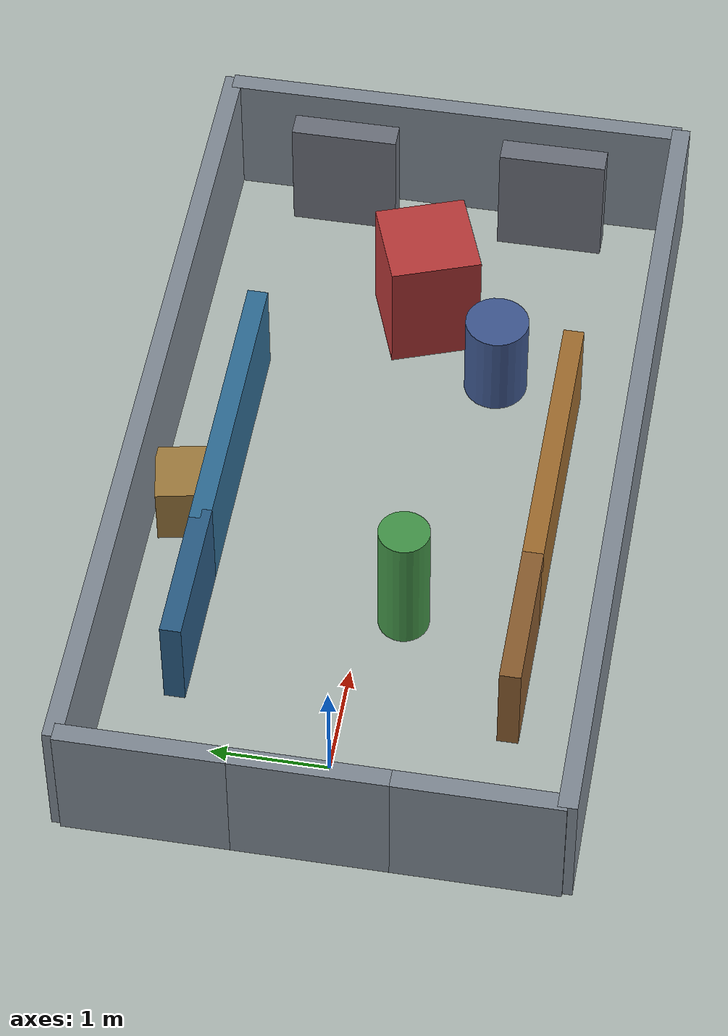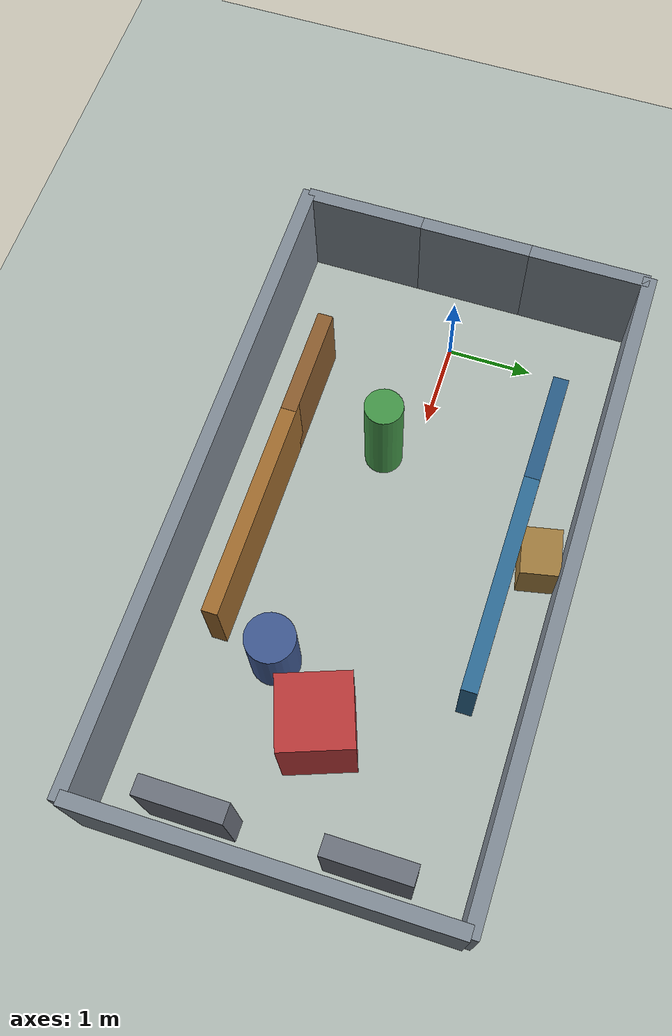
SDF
<?xml version="1.0"?>
<sdf version="1.9">
  <world name="lingtu_gazebo_empty">
    <plugin filename="gz-sim-physics-system" name="gz::sim::systems::Physics"/>
    <plugin filename="gz-sim-user-commands-system" name="gz::sim::systems::UserCommands"/>
    <plugin filename="gz-sim-scene-broadcaster-system" name="gz::sim::systems::SceneBroadcaster"/>
    <plugin filename="gz-sim-sensors-system" name="gz::sim::systems::Sensors">
      <render_engine>ogre2</render_engine>
    </plugin>

    <gravity>0 0 -9.81</gravity>
    <magnetic_field>6e-06 2.3e-05 -4.2e-05</magnetic_field>
    <atmosphere type="adiabatic"/>

    <light name="sun" type="directional">
      <cast_shadows>true</cast_shadows>
      <pose>0 0 10 0 0 0</pose>
      <diffuse>0.8 0.8 0.8 1</diffuse>
      <specular>0.2 0.2 0.2 1</specular>
      <direction>-0.5 0.1 -0.9</direction>
    </light>

    <model name="ground_plane">
      <static>true</static>
      <pose>2.85 0 0 0 0 0</pose>
      <link name="link">
        <collision name="collision">
          <geometry>
            <plane>
              <normal>0 0 1</normal>
              <size>9 6</size>
            </plane>
          </geometry>
          <surface>
            <friction>
              <ode>
                <mu>1.2</mu>
                <mu2>1.2</mu2>
              </ode>
            </friction>
          </surface>
        </collision>
        <visual name="visual">
          <geometry>
            <plane>
              <normal>0 0 1</normal>
              <size>9 6</size>
            </plane>
          </geometry>
          <material>
            <ambient>0.55 0.58 0.56 1</ambient>
            <diffuse>0.68 0.72 0.70 1</diffuse>
          </material>
        </visual>
      </link>
    </model>

    <model name="frontier_demo_wall_left">
      <static>true</static>
      <pose>3.0 1.4 0.45 0 0 0</pose>
      <link name="link">
        <collision name="collision">
          <geometry>
            <box>
              <size>2.6 0.18 0.9</size>
            </box>
          </geometry>
        </collision>
        <visual name="visual">
          <geometry>
            <box>
              <size>2.6 0.18 0.9</size>
            </box>
          </geometry>
          <material>
            <ambient>0.15 0.28 0.38 1</ambient>
            <diffuse>0.18 0.42 0.58 1</diffuse>
          </material>
        </visual>
      </link>
    </model>

    <model name="frontier_demo_wall_right">
      <static>true</static>
      <pose>3.0 -1.4 0.45 0 0 0</pose>
      <link name="link">
        <collision name="collision">
          <geometry>
            <box>
              <size>2.6 0.18 0.9</size>
            </box>
          </geometry>
        </collision>
        <visual name="visual">
          <geometry>
            <box>
              <size>2.6 0.18 0.9</size>
            </box>
          </geometry>
          <material>
            <ambient>0.36 0.24 0.12 1</ambient>
            <diffuse>0.62 0.42 0.18 1</diffuse>
          </material>
        </visual>
      </link>
    </model>

    <model name="frontier_demo_block">
      <static>true</static>
      <pose>5.0 0.0 0.55 0 0 0.35</pose>
      <link name="link">
        <collision name="collision">
          <geometry>
            <box>
              <size>0.8 0.8 1.1</size>
            </box>
          </geometry>
        </collision>
        <visual name="visual">
          <geometry>
            <box>
              <size>0.8 0.8 1.1</size>
            </box>
          </geometry>
          <material>
            <ambient>0.42 0.16 0.16 1</ambient>
            <diffuse>0.72 0.22 0.22 1</diffuse>
          </material>
        </visual>
      </link>
    </model>

    <model name="frontier_demo_column">
      <static>true</static>
      <pose>1.6 -0.35 0.6 0 0 0</pose>
      <link name="link">
        <collision name="collision">
          <geometry>
            <cylinder>
              <radius>0.22</radius>
              <length>1.2</length>
            </cylinder>
          </geometry>
        </collision>
        <visual name="visual">
          <geometry>
            <cylinder>
              <radius>0.22</radius>
              <length>1.2</length>
            </cylinder>
          </geometry>
          <material>
            <ambient>0.18 0.34 0.18 1</ambient>
            <diffuse>0.26 0.58 0.28 1</diffuse>
          </material>
        </visual>
      </link>
    </model>

    <model name="frontier_demo_wall_left_near">
      <static>true</static>
      <pose>1.15 1.4 0.45 0 0 0</pose>
      <link name="link">
        <collision name="collision">
          <geometry>
            <box>
              <size>1.3 0.18 0.9</size>
            </box>
          </geometry>
        </collision>
        <visual name="visual">
          <geometry>
            <box>
              <size>1.3 0.18 0.9</size>
            </box>
          </geometry>
          <material>
            <ambient>0.14 0.26 0.34 1</ambient>
            <diffuse>0.16 0.36 0.52 1</diffuse>
          </material>
        </visual>
      </link>
    </model>

    <model name="frontier_demo_wall_right_near">
      <static>true</static>
      <pose>1.15 -1.4 0.45 0 0 0</pose>
      <link name="link">
        <collision name="collision">
          <geometry>
            <box>
              <size>1.3 0.18 0.9</size>
            </box>
          </geometry>
        </collision>
        <visual name="visual">
          <geometry>
            <box>
              <size>1.3 0.18 0.9</size>
            </box>
          </geometry>
          <material>
            <ambient>0.32 0.22 0.12 1</ambient>
            <diffuse>0.54 0.36 0.18 1</diffuse>
          </material>
        </visual>
      </link>
    </model>

    <model name="frontier_demo_back_wall_left">
      <static>true</static>
      <pose>6.2 0.95 0.55 0 0 0</pose>
      <link name="link">
        <collision name="collision">
          <geometry>
            <box>
              <size>0.22 0.95 1.1</size>
            </box>
          </geometry>
        </collision>
        <visual name="visual">
          <geometry>
            <box>
              <size>0.22 0.95 1.1</size>
            </box>
          </geometry>
          <material>
            <ambient>0.26 0.26 0.28 1</ambient>
            <diffuse>0.42 0.44 0.48 1</diffuse>
          </material>
        </visual>
      </link>
    </model>

    <model name="frontier_demo_back_wall_right">
      <static>true</static>
      <pose>6.2 -0.95 0.55 0 0 0</pose>
      <link name="link">
        <collision name="collision">
          <geometry>
            <box>
              <size>0.22 0.95 1.1</size>
            </box>
          </geometry>
        </collision>
        <visual name="visual">
          <geometry>
            <box>
              <size>0.22 0.95 1.1</size>
            </box>
          </geometry>
          <material>
            <ambient>0.26 0.26 0.28 1</ambient>
            <diffuse>0.42 0.44 0.48 1</diffuse>
          </material>
        </visual>
      </link>
    </model>

    <model name="frontier_demo_side_crate">
      <static>true</static>
      <pose>2.45 1.72 0.28 0 0 0.2</pose>
      <link name="link">
        <collision name="collision">
          <geometry>
            <box>
              <size>0.55 0.45 0.56</size>
            </box>
          </geometry>
        </collision>
        <visual name="visual">
          <geometry>
            <box>
              <size>0.55 0.45 0.56</size>
            </box>
          </geometry>
          <material>
            <ambient>0.38 0.30 0.16 1</ambient>
            <diffuse>0.62 0.48 0.24 1</diffuse>
          </material>
        </visual>
      </link>
    </model>

    <model name="frontier_demo_barrel">
      <static>true</static>
      <pose>4.35 -0.72 0.42 0 0 0</pose>
      <link name="link">
        <collision name="collision">
          <geometry>
            <cylinder>
              <radius>0.28</radius>
              <length>0.84</length>
            </cylinder>
          </geometry>
        </collision>
        <visual name="visual">
          <geometry>
            <cylinder>
              <radius>0.28</radius>
              <length>0.84</length>
            </cylinder>
          </geometry>
          <material>
            <ambient>0.18 0.24 0.34 1</ambient>
            <diffuse>0.24 0.34 0.56 1</diffuse>
          </material>
        </visual>
      </link>
    </model>

    <model name="frontier_demo_room_left_wall">
      <static>true</static>
      <pose>2.85 2.05 0.6 0 0 0</pose>
      <link name="link">
        <collision name="collision">
          <geometry>
            <box>
              <size>7.5 0.16 1.2</size>
            </box>
          </geometry>
        </collision>
        <visual name="visual">
          <geometry>
            <box>
              <size>7.5 0.16 1.2</size>
            </box>
          </geometry>
          <material>
            <ambient>0.30 0.32 0.34 1</ambient>
            <diffuse>0.50 0.54 0.58 1</diffuse>
          </material>
        </visual>
      </link>
    </model>

    <model name="frontier_demo_room_right_wall">
      <static>true</static>
      <pose>2.85 -2.05 0.6 0 0 0</pose>
      <link name="link">
        <collision name="collision">
          <geometry>
            <box>
              <size>7.5 0.16 1.2</size>
            </box>
          </geometry>
        </collision>
        <visual name="visual">
          <geometry>
            <box>
              <size>7.5 0.16 1.2</size>
            </box>
          </geometry>
          <material>
            <ambient>0.30 0.32 0.34 1</ambient>
            <diffuse>0.50 0.54 0.58 1</diffuse>
          </material>
        </visual>
      </link>
    </model>

    <model name="frontier_demo_room_back_wall">
      <static>true</static>
      <pose>6.55 0 0.6 0 0 0</pose>
      <link name="link">
        <collision name="collision">
          <geometry>
            <box>
              <size>0.16 4.1 1.2</size>
            </box>
          </geometry>
        </collision>
        <visual name="visual">
          <geometry>
            <box>
              <size>0.16 4.1 1.2</size>
            </box>
          </geometry>
          <material>
            <ambient>0.30 0.32 0.34 1</ambient>
            <diffuse>0.50 0.54 0.58 1</diffuse>
          </material>
        </visual>
      </link>
    </model>

    <model name="frontier_demo_room_front_left_wall">
      <static>true</static>
      <pose>-0.85 1.35 0.6 0 0 0</pose>
      <link name="link">
        <collision name="collision">
          <geometry>
            <box>
              <size>0.16 1.4 1.2</size>
            </box>
          </geometry>
        </collision>
        <visual name="visual">
          <geometry>
            <box>
              <size>0.16 1.4 1.2</size>
            </box>
          </geometry>
          <material>
            <ambient>0.30 0.32 0.34 1</ambient>
            <diffuse>0.50 0.54 0.58 1</diffuse>
          </material>
        </visual>
      </link>
    </model>

    <model name="frontier_demo_room_front_right_wall">
      <static>true</static>
      <pose>-0.85 -1.35 0.6 0 0 0</pose>
      <link name="link">
        <collision name="collision">
          <geometry>
            <box>
              <size>0.16 1.4 1.2</size>
            </box>
          </geometry>
        </collision>
        <visual name="visual">
          <geometry>
            <box>
              <size>0.16 1.4 1.2</size>
            </box>
          </geometry>
          <material>
            <ambient>0.30 0.32 0.34 1</ambient>
            <diffuse>0.50 0.54 0.58 1</diffuse>
          </material>
        </visual>
      </link>
    </model>

    <model name="frontier_demo_room_front_center_wall">
      <static>true</static>
      <pose>-0.85 0 0.6 0 0 0</pose>
      <link name="link">
        <collision name="collision">
          <geometry>
            <box>
              <size>0.16 1.3 1.2</size>
            </box>
          </geometry>
        </collision>
        <visual name="visual">
          <geometry>
            <box>
              <size>0.16 1.3 1.2</size>
            </box>
          </geometry>
          <material>
            <ambient>0.30 0.32 0.34 1</ambient>
            <diffuse>0.50 0.54 0.58 1</diffuse>
          </material>
        </visual>
      </link>
    </model>

    <physics name="lingtu_physics" type="ode">
      <max_step_size>0.005</max_step_size>
      <real_time_factor>1.0</real_time_factor>
      <real_time_update_rate>200</real_time_update_rate>
    </physics>
  </world>
</sdf>
